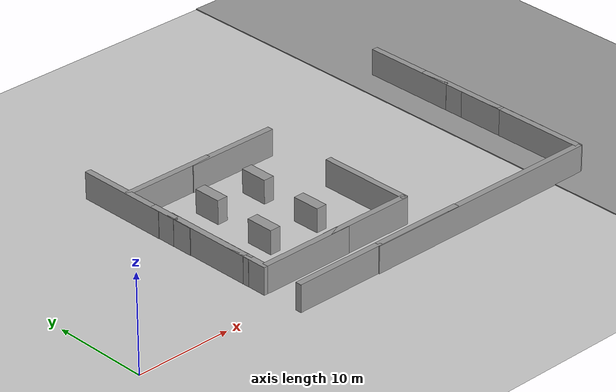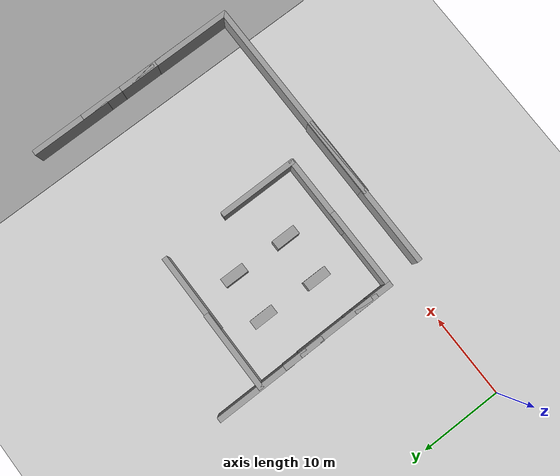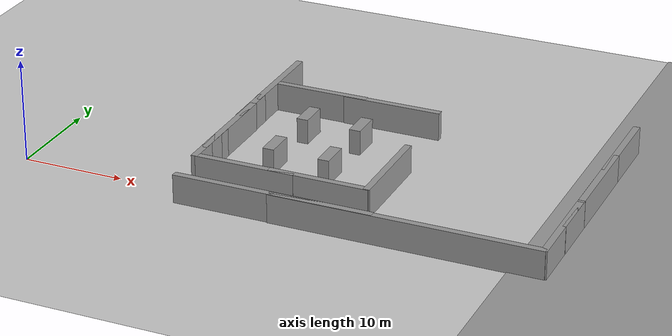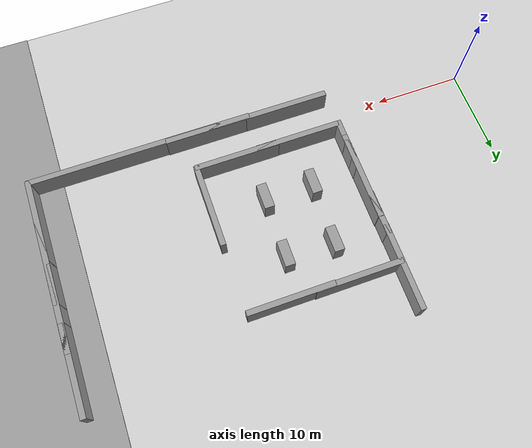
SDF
<sdf version="1.7">
 <world name="default">
  <model name="ground_plane">
   <static>1</static>
   <link name="link">
    <collision name="collision">
     <geometry><plane><normal>0 0 1</normal><size>100 100</size></plane></geometry>
     <surface><friction><ode><mu>100</mu><mu2>50</mu2></ode></friction></surface>
    </collision>
    <visual name="visual">
     <cast_shadows>0</cast_shadows>
     <geometry><plane><normal>0 0 1</normal><size>100 100</size></plane></geometry>
     <material>
      <script><uri>file://media/materials/scripts/gazebo.material</uri><name>Gazebo/Grey</name></script>
     </material>
    </visual>
   </link>
  </model>
  <model name="grey_wall_hou_clone_clone_clone_0">
   <link name="link">
    <pose>0 0 1.37589 0 -0 0</pose>
    <inertial>
     <inertia><ixx>0</ixx><ixy>0</ixy><ixz>0</ixz><iyy>0</iyy><iyz>0</iyz><izz>0</izz></inertia>
     <mass>0</mass>
    </inertial>
    <visual name="visual">
     <cast_shadows>0</cast_shadows>
     <geometry><box><size>9.82221 0.642976 2.8</size></box></geometry>
     <material>
      <script>
       <uri>model://grey_wall/materials/scripts</uri>
       <uri>model://grey_wall/materials/textures</uri>
       <name>vrc/grey_wall</name>
      </script>
      <shader type="pixel"><normal_map>__default__</normal_map></shader>
      <ambient>1 1 1 1</ambient>
      <diffuse>1 1 1 1</diffuse>
      <specular>0 0 0 1</specular>
      <emissive>0 0 0 1</emissive>
     </material>
    </visual>
    <collision name="collision">
     <geometry><box><size>9.82221 0.642976 2.8</size></box></geometry>
     <surface>
      <friction>
       <ode><mu>1</mu><mu2>1</mu2><fdir1>0 0 0</fdir1><slip1>0</slip1><slip2>0</slip2></ode>
       <torsional>
        <coefficient>1</coefficient>
        <patch_radius>0</patch_radius>
        <surface_radius>0</surface_radius>
        <use_patch_radius>1</use_patch_radius>
        <ode><slip>0</slip></ode>
       </torsional>
      </friction>
      <bounce><restitution_coefficient>0</restitution_coefficient><threshold>1e+06</threshold></bounce>
      <contact>
       <collide_without_contact>0</collide_without_contact>
       <collide_without_contact_bitmask>1</collide_without_contact_bitmask>
       <collide_bitmask>1</collide_bitmask>
       <ode>
        <soft_cfm>0</soft_cfm>
        <soft_erp>0.2</soft_erp>
        <kp>1e+13</kp>
        <kd>1</kd>
        <max_vel>0.01</max_vel>
        <min_depth>0</min_depth>
       </ode>
       <bullet>
        <split_impulse>1</split_impulse>
        <split_impulse_penetration_threshold>-0.01</split_impulse_penetration_threshold>
        <soft_cfm>0</soft_cfm>
        <soft_erp>0.2</soft_erp>
        <kp>1e+13</kp>
        <kd>1</kd>
       </bullet>
      </contact>
     </surface>
    </collision>
   </link>
   <static>1</static>
   <pose>21.4576 -1.87455 0 0 -0 0</pose>
  </model>
  <model name="grey_wall_hou_clone_clone_clone_1">
   <link name="link">
    <pose>0 0 1.37589 0 -0 0</pose>
    <inertial>
     <inertia><ixx>0</ixx><ixy>0</ixy><ixz>0</ixz><iyy>0</iyy><iyz>0</iyz><izz>0</izz></inertia>
     <mass>0</mass>
    </inertial>
    <visual name="visual">
     <cast_shadows>0</cast_shadows>
     <geometry><box><size>9.82221 0.642976 2.8</size></box></geometry>
     <material>
      <script>
       <uri>model://grey_wall/materials/scripts</uri>
       <uri>model://grey_wall/materials/textures</uri>
       <name>vrc/grey_wall</name>
      </script>
      <shader type="pixel"><normal_map>__default__</normal_map></shader>
      <ambient>1 1 1 1</ambient>
      <diffuse>1 1 1 1</diffuse>
      <specular>0 0 0 1</specular>
      <emissive>0 0 0 1</emissive>
     </material>
    </visual>
    <collision name="collision">
     <geometry><box><size>9.82221 0.642976 2.8</size></box></geometry>
     <surface>
      <friction>
       <ode><mu>1</mu><mu2>1</mu2><fdir1>0 0 0</fdir1><slip1>0</slip1><slip2>0</slip2></ode>
       <torsional>
        <coefficient>1</coefficient>
        <patch_radius>0</patch_radius>
        <surface_radius>0</surface_radius>
        <use_patch_radius>1</use_patch_radius>
        <ode><slip>0</slip></ode>
       </torsional>
      </friction>
      <bounce><restitution_coefficient>0</restitution_coefficient><threshold>1e+06</threshold></bounce>
      <contact>
       <collide_without_contact>0</collide_without_contact>
       <collide_without_contact_bitmask>1</collide_without_contact_bitmask>
       <collide_bitmask>1</collide_bitmask>
       <ode>
        <soft_cfm>0</soft_cfm>
        <soft_erp>0.2</soft_erp>
        <kp>1e+13</kp>
        <kd>1</kd>
        <max_vel>0.01</max_vel>
        <min_depth>0</min_depth>
       </ode>
       <bullet>
        <split_impulse>1</split_impulse>
        <split_impulse_penetration_threshold>-0.01</split_impulse_penetration_threshold>
        <soft_cfm>0</soft_cfm>
        <soft_erp>0.2</soft_erp>
        <kp>1e+13</kp>
        <kd>1</kd>
       </bullet>
      </contact>
     </surface>
    </collision>
   </link>
   <static>1</static>
   <pose>30.9497 -1.88522 0 0 -0 0</pose>
  </model>
  <model name="ground_plane_0">
   <static>1</static>
   <link name="link">
    <collision name="collision">
     <geometry><plane><normal>0 0 1</normal><size>100 100</size></plane></geometry>
     <surface>
      <contact><collide_bitmask>65535</collide_bitmask></contact>
      <friction><ode><mu>100</mu><mu2>50</mu2></ode></friction>
     </surface>
    </collision>
    <visual name="visual">
     <cast_shadows>0</cast_shadows>
     <geometry><plane><normal>0 0 1</normal><size>100 100</size></plane></geometry>
     <material>
      <script><uri>file://media/materials/scripts/gazebo.material</uri><name>Gazebo/Grey</name></script>
     </material>
    </visual>
   </link>
   <pose>98.3802 0.128223 0 0 -0 0</pose>
  </model>
  <model name="grey_wall_hou_clone_clone_clone_5">
   <link name="link">
    <pose>0 0 1.37589 0 -0 0</pose>
    <inertial>
     <inertia><ixx>0</ixx><ixy>0</ixy><ixz>0</ixz><iyy>0</iyy><iyz>0</iyz><izz>0</izz></inertia>
     <mass>0</mass>
    </inertial>
    <visual name="visual">
     <cast_shadows>0</cast_shadows>
     <geometry><box><size>9.82221 0.642976 2.8</size></box></geometry>
     <material>
      <script>
       <uri>model://grey_wall/materials/scripts</uri>
       <uri>model://grey_wall/materials/textures</uri>
       <name>vrc/grey_wall</name>
      </script>
      <shader type="pixel"><normal_map>__default__</normal_map></shader>
      <ambient>1 1 1 1</ambient>
      <diffuse>1 1 1 1</diffuse>
      <specular>0 0 0 1</specular>
      <emissive>0 0 0 1</emissive>
     </material>
    </visual>
    <collision name="collision">
     <geometry><box><size>9.82221 0.642976 2.8</size></box></geometry>
     <surface>
      <friction>
       <ode><mu>1</mu><mu2>1</mu2><fdir1>0 0 0</fdir1><slip1>0</slip1><slip2>0</slip2></ode>
       <torsional>
        <coefficient>1</coefficient>
        <patch_radius>0</patch_radius>
        <surface_radius>0</surface_radius>
        <use_patch_radius>1</use_patch_radius>
        <ode><slip>0</slip></ode>
       </torsional>
      </friction>
      <bounce><restitution_coefficient>0</restitution_coefficient><threshold>1e+06</threshold></bounce>
      <contact>
       <collide_without_contact>0</collide_without_contact>
       <collide_without_contact_bitmask>1</collide_without_contact_bitmask>
       <collide_bitmask>1</collide_bitmask>
       <ode>
        <soft_cfm>0</soft_cfm>
        <soft_erp>0.2</soft_erp>
        <kp>1e+13</kp>
        <kd>1</kd>
        <max_vel>0.01</max_vel>
        <min_depth>0</min_depth>
       </ode>
       <bullet>
        <split_impulse>1</split_impulse>
        <split_impulse_penetration_threshold>-0.01</split_impulse_penetration_threshold>
        <soft_cfm>0</soft_cfm>
        <soft_erp>0.2</soft_erp>
        <kp>1e+13</kp>
        <kd>1</kd>
       </bullet>
      </contact>
     </surface>
    </collision>
   </link>
   <static>1</static>
   <pose>21.5273 2.36287 0 0 -0 0</pose>
  </model>
  <model name="grey_wall_hou_clone_clone_3_clone_4">
   <link name="link">
    <pose>0 0 1.37589 0 -0 0</pose>
    <inertial>
     <inertia><ixx>0</ixx><ixy>0</ixy><ixz>0</ixz><iyy>0</iyy><iyz>0</iyz><izz>0</izz></inertia>
     <mass>0</mass>
    </inertial>
    <visual name="visual">
     <cast_shadows>0</cast_shadows>
     <geometry><box><size>9.82221 0.642976 2.8</size></box></geometry>
     <material>
      <script>
       <uri>model://grey_wall/materials/scripts</uri>
       <uri>model://grey_wall/materials/textures</uri>
       <name>vrc/grey_wall</name>
      </script>
      <shader type="pixel"><normal_map>__default__</normal_map></shader>
      <ambient>1 1 1 1</ambient>
      <diffuse>1 1 1 1</diffuse>
      <specular>0 0 0 1</specular>
      <emissive>0 0 0 1</emissive>
     </material>
    </visual>
    <collision name="collision">
     <geometry><box><size>9.82221 0.642976 2.8</size></box></geometry>
     <surface>
      <friction>
       <ode><mu>1</mu><mu2>1</mu2><fdir1>0 0 0</fdir1><slip1>0</slip1><slip2>0</slip2></ode>
       <torsional>
        <coefficient>1</coefficient>
        <patch_radius>0</patch_radius>
        <surface_radius>0</surface_radius>
        <use_patch_radius>1</use_patch_radius>
        <ode><slip>0</slip></ode>
       </torsional>
      </friction>
      <bounce><restitution_coefficient>0</restitution_coefficient><threshold>1e+06</threshold></bounce>
      <contact>
       <collide_without_contact>0</collide_without_contact>
       <collide_without_contact_bitmask>1</collide_without_contact_bitmask>
       <collide_bitmask>1</collide_bitmask>
       <ode>
        <soft_cfm>0</soft_cfm>
        <soft_erp>0.2</soft_erp>
        <kp>1e+13</kp>
        <kd>1</kd>
        <max_vel>0.01</max_vel>
        <min_depth>0</min_depth>
       </ode>
       <bullet>
        <split_impulse>1</split_impulse>
        <split_impulse_penetration_threshold>-0.01</split_impulse_penetration_threshold>
        <soft_cfm>0</soft_cfm>
        <soft_erp>0.2</soft_erp>
        <kp>1e+13</kp>
        <kd>1</kd>
       </bullet>
      </contact>
     </surface>
    </collision>
   </link>
   <static>1</static>
   <pose>16.3936 20.4757 0 0 0 -1.56855</pose>
  </model>
  <model name="grey_wall_hou_clone_clone_clone_6">
   <link name="link">
    <pose>0 0 1.37589 0 -0 0</pose>
    <inertial>
     <inertia><ixx>0</ixx><ixy>0</ixy><ixz>0</ixz><iyy>0</iyy><iyz>0</iyz><izz>0</izz></inertia>
     <mass>0</mass>
    </inertial>
    <visual name="visual">
     <cast_shadows>0</cast_shadows>
     <geometry><box><size>9.82221 0.642976 2.8</size></box></geometry>
     <material>
      <script>
       <uri>model://grey_wall/materials/scripts</uri>
       <uri>model://grey_wall/materials/textures</uri>
       <name>vrc/grey_wall</name>
      </script>
      <shader type="pixel"><normal_map>__default__</normal_map></shader>
      <ambient>1 1 1 1</ambient>
      <diffuse>1 1 1 1</diffuse>
      <specular>0 0 0 1</specular>
      <emissive>0 0 0 1</emissive>
     </material>
    </visual>
    <collision name="collision">
     <geometry><box><size>9.82221 0.642976 2.8</size></box></geometry>
     <surface>
      <friction>
       <ode><mu>1</mu><mu2>1</mu2><fdir1>0 0 0</fdir1><slip1>0</slip1><slip2>0</slip2></ode>
       <torsional>
        <coefficient>1</coefficient>
        <patch_radius>0</patch_radius>
        <surface_radius>0</surface_radius>
        <use_patch_radius>1</use_patch_radius>
        <ode><slip>0</slip></ode>
       </torsional>
      </friction>
      <bounce><restitution_coefficient>0</restitution_coefficient><threshold>1e+06</threshold></bounce>
      <contact>
       <collide_without_contact>0</collide_without_contact>
       <collide_without_contact_bitmask>1</collide_without_contact_bitmask>
       <collide_bitmask>1</collide_bitmask>
       <ode>
        <soft_cfm>0</soft_cfm>
        <soft_erp>0.2</soft_erp>
        <kp>1e+13</kp>
        <kd>1</kd>
        <max_vel>0.01</max_vel>
        <min_depth>0</min_depth>
       </ode>
       <bullet>
        <split_impulse>1</split_impulse>
        <split_impulse_penetration_threshold>-0.01</split_impulse_penetration_threshold>
        <soft_cfm>0</soft_cfm>
        <soft_erp>0.2</soft_erp>
        <kp>1e+13</kp>
        <kd>1</kd>
       </bullet>
      </contact>
     </surface>
    </collision>
   </link>
   <static>1</static>
   <pose>28.8284 2.39593 0 0 -0 0</pose>
  </model>
  <model name="grey_wall_hou_clone_clone_clone_7">
   <link name="link">
    <pose>0 0 1.37589 0 -0 0</pose>
    <inertial>
     <inertia><ixx>0</ixx><ixy>0</ixy><ixz>0</ixz><iyy>0</iyy><iyz>0</iyz><izz>0</izz></inertia>
     <mass>0</mass>
    </inertial>
    <visual name="visual">
     <cast_shadows>0</cast_shadows>
     <geometry><box><size>9.82221 0.642976 2.8</size></box></geometry>
     <material>
      <script>
       <uri>model://grey_wall/materials/scripts</uri>
       <uri>model://grey_wall/materials/textures</uri>
       <name>vrc/grey_wall</name>
      </script>
      <shader type="pixel"><normal_map>__default__</normal_map></shader>
      <ambient>1 1 1 1</ambient>
      <diffuse>1 1 1 1</diffuse>
      <specular>0 0 0 1</specular>
      <emissive>0 0 0 1</emissive>
     </material>
    </visual>
    <collision name="collision">
     <geometry><box><size>9.82221 0.642976 2.8</size></box></geometry>
     <surface>
      <friction>
       <ode><mu>1</mu><mu2>1</mu2><fdir1>0 0 0</fdir1><slip1>0</slip1><slip2>0</slip2></ode>
       <torsional>
        <coefficient>1</coefficient>
        <patch_radius>0</patch_radius>
        <surface_radius>0</surface_radius>
        <use_patch_radius>1</use_patch_radius>
        <ode><slip>0</slip></ode>
       </torsional>
      </friction>
      <bounce><restitution_coefficient>0</restitution_coefficient><threshold>1e+06</threshold></bounce>
      <contact>
       <collide_without_contact>0</collide_without_contact>
       <collide_without_contact_bitmask>1</collide_without_contact_bitmask>
       <collide_bitmask>1</collide_bitmask>
       <ode>
        <soft_cfm>0</soft_cfm>
        <soft_erp>0.2</soft_erp>
        <kp>1e+13</kp>
        <kd>1</kd>
        <max_vel>0.01</max_vel>
        <min_depth>0</min_depth>
       </ode>
       <bullet>
        <split_impulse>1</split_impulse>
        <split_impulse_penetration_threshold>-0.01</split_impulse_penetration_threshold>
        <soft_cfm>0</soft_cfm>
        <soft_erp>0.2</soft_erp>
        <kp>1e+13</kp>
        <kd>1</kd>
       </bullet>
      </contact>
     </surface>
    </collision>
   </link>
   <static>1</static>
   <pose>28.7009 19.7656 0 0 -0 0</pose>
  </model>
  <model name="grey_wall_hou_clone_clone_clone_8">
   <link name="link">
    <pose>0 0 1.37589 0 -0 0</pose>
    <inertial>
     <inertia><ixx>0</ixx><ixy>0</ixy><ixz>0</ixz><iyy>0</iyy><iyz>0</iyz><izz>0</izz></inertia>
     <mass>0</mass>
    </inertial>
    <visual name="visual">
     <cast_shadows>0</cast_shadows>
     <geometry><box><size>9.82221 0.642976 2.8</size></box></geometry>
     <material>
      <script>
       <uri>model://grey_wall/materials/scripts</uri>
       <uri>model://grey_wall/materials/textures</uri>
       <name>vrc/grey_wall</name>
      </script>
      <shader type="pixel"><normal_map>__default__</normal_map></shader>
      <ambient>1 1 1 1</ambient>
      <diffuse>1 1 1 1</diffuse>
      <specular>0 0 0 1</specular>
      <emissive>0 0 0 1</emissive>
     </material>
    </visual>
    <collision name="collision">
     <geometry><box><size>9.82221 0.642976 2.8</size></box></geometry>
     <surface>
      <friction>
       <ode><mu>1</mu><mu2>1</mu2><fdir1>0 0 0</fdir1><slip1>0</slip1><slip2>0</slip2></ode>
       <torsional>
        <coefficient>1</coefficient>
        <patch_radius>0</patch_radius>
        <surface_radius>0</surface_radius>
        <use_patch_radius>1</use_patch_radius>
        <ode><slip>0</slip></ode>
       </torsional>
      </friction>
      <bounce><restitution_coefficient>0</restitution_coefficient><threshold>1e+06</threshold></bounce>
      <contact>
       <collide_without_contact>0</collide_without_contact>
       <collide_without_contact_bitmask>1</collide_without_contact_bitmask>
       <collide_bitmask>1</collide_bitmask>
       <ode>
        <soft_cfm>0</soft_cfm>
        <soft_erp>0.2</soft_erp>
        <kp>1e+13</kp>
        <kd>1</kd>
        <max_vel>0.01</max_vel>
        <min_depth>0</min_depth>
       </ode>
       <bullet>
        <split_impulse>1</split_impulse>
        <split_impulse_penetration_threshold>-0.01</split_impulse_penetration_threshold>
        <soft_cfm>0</soft_cfm>
        <soft_erp>0.2</soft_erp>
        <kp>1e+13</kp>
        <kd>1</kd>
       </bullet>
      </contact>
     </surface>
    </collision>
   </link>
   <static>1</static>
   <pose>21.1249 19.8433 0 0 -0 0</pose>
  </model>
  <model name="grey_wall_hou_clone_clone_3_clone_0_clone_1_clone_3_clone_0">
   <link name="link">
    <pose>0 0 1.37589 0 -0 0</pose>
    <inertial>
     <inertia><ixx>0</ixx><ixy>0</ixy><ixz>0</ixz><iyy>0</iyy><iyz>0</iyz><izz>0</izz></inertia>
     <mass>0</mass>
    </inertial>
    <visual name="visual">
     <cast_shadows>0</cast_shadows>
     <geometry><box><size>9.82221 0.642976 2.8</size></box></geometry>
     <material>
      <script>
       <uri>model://grey_wall/materials/scripts</uri>
       <uri>model://grey_wall/materials/textures</uri>
       <name>vrc/grey_wall</name>
      </script>
      <shader type="pixel"><normal_map>__default__</normal_map></shader>
      <ambient>1 1 1 1</ambient>
      <diffuse>1 1 1 1</diffuse>
      <specular>0 0 0 1</specular>
      <emissive>0 0 0 1</emissive>
     </material>
    </visual>
    <collision name="collision">
     <geometry><box><size>9.82221 0.642976 2.8</size></box></geometry>
     <surface>
      <friction>
       <ode><mu>1</mu><mu2>1</mu2><fdir1>0 0 0</fdir1><slip1>0</slip1><slip2>0</slip2></ode>
       <torsional>
        <coefficient>1</coefficient>
        <patch_radius>0</patch_radius>
        <surface_radius>0</surface_radius>
        <use_patch_radius>1</use_patch_radius>
        <ode><slip>0</slip></ode>
       </torsional>
      </friction>
      <bounce><restitution_coefficient>0</restitution_coefficient><threshold>1e+06</threshold></bounce>
      <contact>
       <collide_without_contact>0</collide_without_contact>
       <collide_without_contact_bitmask>1</collide_without_contact_bitmask>
       <collide_bitmask>1</collide_bitmask>
       <ode>
        <soft_cfm>0</soft_cfm>
        <soft_erp>0.2</soft_erp>
        <kp>1e+13</kp>
        <kd>1</kd>
        <max_vel>0.01</max_vel>
        <min_depth>0</min_depth>
       </ode>
       <bullet>
        <split_impulse>1</split_impulse>
        <split_impulse_penetration_threshold>-0.01</split_impulse_penetration_threshold>
        <soft_cfm>0</soft_cfm>
        <soft_erp>0.2</soft_erp>
        <kp>1e+13</kp>
        <kd>1</kd>
       </bullet>
      </contact>
     </surface>
    </collision>
   </link>
   <static>1</static>
   <pose>51.5979 7.56842 0 0 0 -1.56855</pose>
  </model>
  <model name="grey_wall_hou_clone_clone_3_clone_0_clone_1_clone_3_clone_clone_1">
   <link name="link">
    <pose>0 0 1.37589 0 -0 0</pose>
    <inertial>
     <inertia><ixx>0</ixx><ixy>0</ixy><ixz>0</ixz><iyy>0</iyy><iyz>0</iyz><izz>0</izz></inertia>
     <mass>0</mass>
    </inertial>
    <visual name="visual">
     <cast_shadows>0</cast_shadows>
     <geometry><box><size>9.82221 0.642976 2.8</size></box></geometry>
     <material>
      <script>
       <uri>model://grey_wall/materials/scripts</uri>
       <uri>model://grey_wall/materials/textures</uri>
       <name>vrc/grey_wall</name>
      </script>
      <shader type="pixel"><normal_map>__default__</normal_map></shader>
      <ambient>1 1 1 1</ambient>
      <diffuse>1 1 1 1</diffuse>
      <specular>0 0 0 1</specular>
      <emissive>0 0 0 1</emissive>
     </material>
    </visual>
    <collision name="collision">
     <geometry><box><size>9.82221 0.642976 2.8</size></box></geometry>
     <surface>
      <friction>
       <ode><mu>1</mu><mu2>1</mu2><fdir1>0 0 0</fdir1><slip1>0</slip1><slip2>0</slip2></ode>
       <torsional>
        <coefficient>1</coefficient>
        <patch_radius>0</patch_radius>
        <surface_radius>0</surface_radius>
        <use_patch_radius>1</use_patch_radius>
        <ode><slip>0</slip></ode>
       </torsional>
      </friction>
      <bounce><restitution_coefficient>0</restitution_coefficient><threshold>1e+06</threshold></bounce>
      <contact>
       <collide_without_contact>0</collide_without_contact>
       <collide_without_contact_bitmask>1</collide_without_contact_bitmask>
       <collide_bitmask>1</collide_bitmask>
       <ode>
        <soft_cfm>0</soft_cfm>
        <soft_erp>0.2</soft_erp>
        <kp>1e+13</kp>
        <kd>1</kd>
        <max_vel>0.01</max_vel>
        <min_depth>0</min_depth>
       </ode>
       <bullet>
        <split_impulse>1</split_impulse>
        <split_impulse_penetration_threshold>-0.01</split_impulse_penetration_threshold>
        <soft_cfm>0</soft_cfm>
        <soft_erp>0.2</soft_erp>
        <kp>1e+13</kp>
        <kd>1</kd>
       </bullet>
      </contact>
     </surface>
    </collision>
   </link>
   <static>1</static>
   <pose>51.5651 19.3838 0 0 0 -1.56855</pose>
  </model>
  <model name="grey_wall_hou_clone_clone_3_clone_0_clone_1_clone_3_clone_clone_2">
   <link name="link">
    <pose>0 0 1.37589 0 -0 0</pose>
    <inertial>
     <inertia><ixx>0</ixx><ixy>0</ixy><ixz>0</ixz><iyy>0</iyy><iyz>0</iyz><izz>0</izz></inertia>
     <mass>0</mass>
    </inertial>
    <visual name="visual">
     <cast_shadows>0</cast_shadows>
     <geometry><box><size>9.82221 0.642976 2.8</size></box></geometry>
     <material>
      <script>
       <uri>model://grey_wall/materials/scripts</uri>
       <uri>model://grey_wall/materials/textures</uri>
       <name>vrc/grey_wall</name>
      </script>
      <shader type="pixel"><normal_map>__default__</normal_map></shader>
      <ambient>1 1 1 1</ambient>
      <diffuse>1 1 1 1</diffuse>
      <specular>0 0 0 1</specular>
      <emissive>0 0 0 1</emissive>
     </material>
    </visual>
    <collision name="collision">
     <geometry><box><size>9.82221 0.642976 2.8</size></box></geometry>
     <surface>
      <friction>
       <ode><mu>1</mu><mu2>1</mu2><fdir1>0 0 0</fdir1><slip1>0</slip1><slip2>0</slip2></ode>
       <torsional>
        <coefficient>1</coefficient>
        <patch_radius>0</patch_radius>
        <surface_radius>0</surface_radius>
        <use_patch_radius>1</use_patch_radius>
        <ode><slip>0</slip></ode>
       </torsional>
      </friction>
      <bounce><restitution_coefficient>0</restitution_coefficient><threshold>1e+06</threshold></bounce>
      <contact>
       <collide_without_contact>0</collide_without_contact>
       <collide_without_contact_bitmask>1</collide_without_contact_bitmask>
       <collide_bitmask>1</collide_bitmask>
       <ode>
        <soft_cfm>0</soft_cfm>
        <soft_erp>0.2</soft_erp>
        <kp>1e+13</kp>
        <kd>1</kd>
        <max_vel>0.01</max_vel>
        <min_depth>0</min_depth>
       </ode>
       <bullet>
        <split_impulse>1</split_impulse>
        <split_impulse_penetration_threshold>-0.01</split_impulse_penetration_threshold>
        <soft_cfm>0</soft_cfm>
        <soft_erp>0.2</soft_erp>
        <kp>1e+13</kp>
        <kd>1</kd>
       </bullet>
      </contact>
     </surface>
    </collision>
   </link>
   <static>1</static>
   <pose>51.5924 12.8167 0 0 0 -1.56855</pose>
  </model>
  <model name="grey_wall_long">
   <link name="link">
    <pose>0 0 1.37589 0 -0 0</pose>
    <inertial>
     <inertia><ixx>0</ixx><ixy>0</ixy><ixz>0</ixz><iyy>0</iyy><iyz>0</iyz><izz>0</izz></inertia>
     <mass>0</mass>
    </inertial>
    <visual name="visual">
     <cast_shadows>0</cast_shadows>
     <geometry><box><size>25.8815 0.642976 2.8</size></box></geometry>
     <material>
      <script>
       <uri>model://grey_wall/materials/scripts</uri>
       <uri>model://grey_wall/materials/textures</uri>
       <name>vrc/grey_wall</name>
      </script>
      <shader type="pixel"><normal_map>__default__</normal_map></shader>
      <ambient>1 1 1 1</ambient>
      <diffuse>1 1 1 1</diffuse>
      <specular>0 0 0 1</specular>
      <emissive>0 0 0 1</emissive>
     </material>
    </visual>
    <collision name="collision">
     <geometry><box><size>25.8815 0.642976 2.8</size></box></geometry>
     <surface>
      <friction>
       <ode><mu>1</mu><mu2>1</mu2><fdir1>0 0 0</fdir1><slip1>0</slip1><slip2>0</slip2></ode>
       <torsional>
        <coefficient>1</coefficient>
        <patch_radius>0</patch_radius>
        <surface_radius>0</surface_radius>
        <use_patch_radius>1</use_patch_radius>
        <ode><slip>0</slip></ode>
       </torsional>
      </friction>
      <bounce><restitution_coefficient>0</restitution_coefficient><threshold>1e+06</threshold></bounce>
      <contact>
       <collide_without_contact>0</collide_without_contact>
       <collide_without_contact_bitmask>1</collide_without_contact_bitmask>
       <collide_bitmask>1</collide_bitmask>
       <ode>
        <soft_cfm>0</soft_cfm>
        <soft_erp>0.2</soft_erp>
        <kp>1e+13</kp>
        <kd>1</kd>
        <max_vel>0.01</max_vel>
        <min_depth>0</min_depth>
       </ode>
       <bullet>
        <split_impulse>1</split_impulse>
        <split_impulse_penetration_threshold>-0.01</split_impulse_penetration_threshold>
        <soft_cfm>0</soft_cfm>
        <soft_erp>0.2</soft_erp>
        <kp>1e+13</kp>
        <kd>1</kd>
       </bullet>
      </contact>
     </surface>
    </collision>
   </link>
   <static>1</static>
   <pose>38.839 -1.96361 0 0 -0 0</pose>
  </model>
  <model name="unit_box_clone_10">
   <pose>27.5167 14.9233 1.23849 4e-06 -0 -0.003523</pose>
   <link name="link">
    <inertial>
     <mass>1</mass>
     <inertia>
      <ixx>0.166667</ixx>
      <ixy>0</ixy>
      <ixz>0</ixz>
      <iyy>0.166667</iyy>
      <iyz>0</iyz>
      <izz>0.166667</izz>
     </inertia>
    </inertial>
    <collision name="collision"><geometry><box><size>1.12952 2.91492 2.47699</size></box></geometry></collision>
    <visual name="visual">
     <geometry><box><size>1.12952 2.91492 2.47699</size></box></geometry>
     <material>
      <script><name>Gazebo/Grey</name><uri>file://media/materials/scripts/gazebo.material</uri></script>
     </material>
    </visual>
   </link>
  </model>
  <model name="unit_box_clone_11">
   <pose>27.3994 7.99611 1.23849 4e-06 -0 0.006005</pose>
   <link name="link">
    <inertial>
     <mass>1</mass>
     <inertia>
      <ixx>0.166667</ixx>
      <ixy>0</ixy>
      <ixz>0</ixz>
      <iyy>0.166667</iyy>
      <iyz>0</iyz>
      <izz>0.166667</izz>
     </inertia>
    </inertial>
    <collision name="collision"><geometry><box><size>1.12952 2.91492 2.47699</size></box></geometry></collision>
    <visual name="visual">
     <geometry><box><size>1.12952 2.91492 2.47699</size></box></geometry>
     <material>
      <script><name>Gazebo/Grey</name><uri>file://media/materials/scripts/gazebo.material</uri></script>
     </material>
    </visual>
   </link>
  </model>
  <model name="unit_box_clone_12">
   <pose>22.0379 15.1339 1.23849 4e-06 -0 0.005237</pose>
   <link name="link">
    <inertial>
     <mass>1</mass>
     <inertia>
      <ixx>0.166667</ixx>
      <ixy>0</ixy>
      <ixz>0</ixz>
      <iyy>0.166667</iyy>
      <iyz>0</iyz>
      <izz>0.166667</izz>
     </inertia>
    </inertial>
    <collision name="collision"><geometry><box><size>1.12952 2.91492 2.47699</size></box></geometry></collision>
    <visual name="visual">
     <geometry><box><size>1.12952 2.91492 2.47699</size></box></geometry>
     <material>
      <script><name>Gazebo/Grey</name><uri>file://media/materials/scripts/gazebo.material</uri></script>
     </material>
    </visual>
   </link>
  </model>
  <model name="unit_box_clone_13">
   <pose>21.8277 8.0603 1.23849 -4e-06 -0 0.002992</pose>
   <link name="link">
    <inertial>
     <mass>1</mass>
     <inertia>
      <ixx>0.166667</ixx>
      <ixy>0</ixy>
      <ixz>0</ixz>
      <iyy>0.166667</iyy>
      <iyz>0</iyz>
      <izz>0.166667</izz>
     </inertia>
    </inertial>
    <collision name="collision"><geometry><box><size>1.12952 2.91492 2.47699</size></box></geometry></collision>
    <visual name="visual">
     <geometry><box><size>1.12952 2.91492 2.47699</size></box></geometry>
     <material>
      <script><name>Gazebo/Grey</name><uri>file://media/materials/scripts/gazebo.material</uri></script>
     </material>
    </visual>
   </link>
  </model>
  <model name="grey_wall_short_0_clone_2">
   <link name="link">
    <pose>0 0 1.37589 0 -0 0</pose>
    <inertial>
     <inertia><ixx>0</ixx><ixy>0</ixy><ixz>0</ixz><iyy>0</iyy><iyz>0</iyz><izz>0</izz></inertia>
     <mass>0</mass>
    </inertial>
    <visual name="visual">
     <cast_shadows>0</cast_shadows>
     <geometry><box><size>3.01651 0.642976 2.8</size></box></geometry>
     <material>
      <script>
       <uri>model://grey_wall/materials/scripts</uri>
       <uri>model://grey_wall/materials/textures</uri>
       <name>vrc/grey_wall</name>
      </script>
      <shader type="pixel"><normal_map>__default__</normal_map></shader>
      <ambient>1 1 1 1</ambient>
      <diffuse>1 1 1 1</diffuse>
      <specular>0 0 0 1</specular>
      <emissive>0 0 0 1</emissive>
     </material>
    </visual>
    <collision name="collision">
     <geometry><box><size>3.01651 0.642976 2.8</size></box></geometry>
     <surface>
      <friction>
       <ode><mu>1</mu><mu2>1</mu2><fdir1>0 0 0</fdir1><slip1>0</slip1><slip2>0</slip2></ode>
       <torsional>
        <coefficient>1</coefficient>
        <patch_radius>0</patch_radius>
        <surface_radius>0</surface_radius>
        <use_patch_radius>1</use_patch_radius>
        <ode><slip>0</slip></ode>
       </torsional>
      </friction>
      <bounce><restitution_coefficient>0</restitution_coefficient><threshold>1e+06</threshold></bounce>
      <contact>
       <collide_without_contact>0</collide_without_contact>
       <collide_without_contact_bitmask>1</collide_without_contact_bitmask>
       <collide_bitmask>1</collide_bitmask>
       <ode>
        <soft_cfm>0</soft_cfm>
        <soft_erp>0.2</soft_erp>
        <kp>1e+13</kp>
        <kd>1</kd>
        <max_vel>0.01</max_vel>
        <min_depth>0</min_depth>
       </ode>
       <bullet>
        <split_impulse>1</split_impulse>
        <split_impulse_penetration_threshold>-0.01</split_impulse_penetration_threshold>
        <soft_cfm>0</soft_cfm>
        <soft_erp>0.2</soft_erp>
        <kp>1e+13</kp>
        <kd>1</kd>
       </bullet>
      </contact>
     </surface>
    </collision>
   </link>
   <static>1</static>
   <pose>16.5494 3.563 0 0 0 -1.57204</pose>
  </model>
  <model name="grey_wall_short_0_clone_3">
   <link name="link">
    <pose>0 0 1.37589 0 -0 0</pose>
    <inertial>
     <inertia><ixx>0</ixx><ixy>0</ixy><ixz>0</ixz><iyy>0</iyy><iyz>0</iyz><izz>0</izz></inertia>
     <mass>0</mass>
    </inertial>
    <visual name="visual">
     <cast_shadows>0</cast_shadows>
     <geometry><box><size>3.01651 0.642976 2.8</size></box></geometry>
     <material>
      <script>
       <uri>model://grey_wall/materials/scripts</uri>
       <uri>model://grey_wall/materials/textures</uri>
       <name>vrc/grey_wall</name>
      </script>
      <shader type="pixel"><normal_map>__default__</normal_map></shader>
      <ambient>1 1 1 1</ambient>
      <diffuse>1 1 1 1</diffuse>
      <specular>0 0 0 1</specular>
      <emissive>0 0 0 1</emissive>
     </material>
    </visual>
    <collision name="collision">
     <geometry><box><size>3.01651 0.642976 2.8</size></box></geometry>
     <surface>
      <friction>
       <ode><mu>1</mu><mu2>1</mu2><fdir1>0 0 0</fdir1><slip1>0</slip1><slip2>0</slip2></ode>
       <torsional>
        <coefficient>1</coefficient>
        <patch_radius>0</patch_radius>
        <surface_radius>0</surface_radius>
        <use_patch_radius>1</use_patch_radius>
        <ode><slip>0</slip></ode>
       </torsional>
      </friction>
      <bounce><restitution_coefficient>0</restitution_coefficient><threshold>1e+06</threshold></bounce>
      <contact>
       <collide_without_contact>0</collide_without_contact>
       <collide_without_contact_bitmask>1</collide_without_contact_bitmask>
       <collide_bitmask>1</collide_bitmask>
       <ode>
        <soft_cfm>0</soft_cfm>
        <soft_erp>0.2</soft_erp>
        <kp>1e+13</kp>
        <kd>1</kd>
        <max_vel>0.01</max_vel>
        <min_depth>0</min_depth>
       </ode>
       <bullet>
        <split_impulse>1</split_impulse>
        <split_impulse_penetration_threshold>-0.01</split_impulse_penetration_threshold>
        <soft_cfm>0</soft_cfm>
        <soft_erp>0.2</soft_erp>
        <kp>1e+13</kp>
        <kd>1</kd>
       </bullet>
      </contact>
     </surface>
    </collision>
   </link>
   <static>1</static>
   <pose>16.5374 5.55252 0 0 0 -1.57204</pose>
  </model>
  <model name="grey_wall_short_0_clone_4">
   <link name="link">
    <pose>0 0 1.37589 0 -0 0</pose>
    <inertial>
     <inertia><ixx>0</ixx><ixy>0</ixy><ixz>0</ixz><iyy>0</iyy><iyz>0</iyz><izz>0</izz></inertia>
     <mass>0</mass>
    </inertial>
    <visual name="visual">
     <cast_shadows>0</cast_shadows>
     <geometry><box><size>3.01651 0.642976 2.8</size></box></geometry>
     <material>
      <script>
       <uri>model://grey_wall/materials/scripts</uri>
       <uri>model://grey_wall/materials/textures</uri>
       <name>vrc/grey_wall</name>
      </script>
      <shader type="pixel"><normal_map>__default__</normal_map></shader>
      <ambient>1 1 1 1</ambient>
      <diffuse>1 1 1 1</diffuse>
      <specular>0 0 0 1</specular>
      <emissive>0 0 0 1</emissive>
     </material>
    </visual>
    <collision name="collision">
     <geometry><box><size>3.01651 0.642976 2.8</size></box></geometry>
     <surface>
      <friction>
       <ode><mu>1</mu><mu2>1</mu2><fdir1>0 0 0</fdir1><slip1>0</slip1><slip2>0</slip2></ode>
       <torsional>
        <coefficient>1</coefficient>
        <patch_radius>0</patch_radius>
        <surface_radius>0</surface_radius>
        <use_patch_radius>1</use_patch_radius>
        <ode><slip>0</slip></ode>
       </torsional>
      </friction>
      <bounce><restitution_coefficient>0</restitution_coefficient><threshold>1e+06</threshold></bounce>
      <contact>
       <collide_without_contact>0</collide_without_contact>
       <collide_without_contact_bitmask>1</collide_without_contact_bitmask>
       <collide_bitmask>1</collide_bitmask>
       <ode>
        <soft_cfm>0</soft_cfm>
        <soft_erp>0.2</soft_erp>
        <kp>1e+13</kp>
        <kd>1</kd>
        <max_vel>0.01</max_vel>
        <min_depth>0</min_depth>
       </ode>
       <bullet>
        <split_impulse>1</split_impulse>
        <split_impulse_penetration_threshold>-0.01</split_impulse_penetration_threshold>
        <soft_cfm>0</soft_cfm>
        <soft_erp>0.2</soft_erp>
        <kp>1e+13</kp>
        <kd>1</kd>
       </bullet>
      </contact>
     </surface>
    </collision>
   </link>
   <static>1</static>
   <pose>16.5353 6.8515 0 0 0 -1.57204</pose>
  </model>
  <model name="grey_wall_short_0_clone_5">
   <link name="link">
    <pose>0 0 1.37589 0 -0 0</pose>
    <inertial>
     <inertia><ixx>0</ixx><ixy>0</ixy><ixz>0</ixz><iyy>0</iyy><iyz>0</iyz><izz>0</izz></inertia>
     <mass>0</mass>
    </inertial>
    <visual name="visual">
     <cast_shadows>0</cast_shadows>
     <geometry><box><size>3.01651 0.642976 2.8</size></box></geometry>
     <material>
      <script>
       <uri>model://grey_wall/materials/scripts</uri>
       <uri>model://grey_wall/materials/textures</uri>
       <name>vrc/grey_wall</name>
      </script>
      <shader type="pixel"><normal_map>__default__</normal_map></shader>
      <ambient>1 1 1 1</ambient>
      <diffuse>1 1 1 1</diffuse>
      <specular>0 0 0 1</specular>
      <emissive>0 0 0 1</emissive>
     </material>
    </visual>
    <collision name="collision">
     <geometry><box><size>3.01651 0.642976 2.8</size></box></geometry>
     <surface>
      <friction>
       <ode><mu>1</mu><mu2>1</mu2><fdir1>0 0 0</fdir1><slip1>0</slip1><slip2>0</slip2></ode>
       <torsional>
        <coefficient>1</coefficient>
        <patch_radius>0</patch_radius>
        <surface_radius>0</surface_radius>
        <use_patch_radius>1</use_patch_radius>
        <ode><slip>0</slip></ode>
       </torsional>
      </friction>
      <bounce><restitution_coefficient>0</restitution_coefficient><threshold>1e+06</threshold></bounce>
      <contact>
       <collide_without_contact>0</collide_without_contact>
       <collide_without_contact_bitmask>1</collide_without_contact_bitmask>
       <collide_bitmask>1</collide_bitmask>
       <ode>
        <soft_cfm>0</soft_cfm>
        <soft_erp>0.2</soft_erp>
        <kp>1e+13</kp>
        <kd>1</kd>
        <max_vel>0.01</max_vel>
        <min_depth>0</min_depth>
       </ode>
       <bullet>
        <split_impulse>1</split_impulse>
        <split_impulse_penetration_threshold>-0.01</split_impulse_penetration_threshold>
        <soft_cfm>0</soft_cfm>
        <soft_erp>0.2</soft_erp>
        <kp>1e+13</kp>
        <kd>1</kd>
       </bullet>
      </contact>
     </surface>
    </collision>
   </link>
   <static>1</static>
   <pose>16.4538 12.9881 0 0 0 -1.57204</pose>
  </model>
  <model name="grey_wall_short_0_clone_6">
   <link name="link">
    <pose>0 0 1.37589 0 -0 0</pose>
    <inertial>
     <inertia><ixx>0</ixx><ixy>0</ixy><ixz>0</ixz><iyy>0</iyy><iyz>0</iyz><izz>0</izz></inertia>
     <mass>0</mass>
    </inertial>
    <visual name="visual">
     <cast_shadows>0</cast_shadows>
     <geometry><box><size>3.01651 0.642976 2.8</size></box></geometry>
     <material>
      <script>
       <uri>model://grey_wall/materials/scripts</uri>
       <uri>model://grey_wall/materials/textures</uri>
       <name>vrc/grey_wall</name>
      </script>
      <shader type="pixel"><normal_map>__default__</normal_map></shader>
      <ambient>1 1 1 1</ambient>
      <diffuse>1 1 1 1</diffuse>
      <specular>0 0 0 1</specular>
      <emissive>0 0 0 1</emissive>
     </material>
    </visual>
    <collision name="collision">
     <geometry><box><size>3.01651 0.642976 2.8</size></box></geometry>
     <surface>
      <friction>
       <ode><mu>1</mu><mu2>1</mu2><fdir1>0 0 0</fdir1><slip1>0</slip1><slip2>0</slip2></ode>
       <torsional>
        <coefficient>1</coefficient>
        <patch_radius>0</patch_radius>
        <surface_radius>0</surface_radius>
        <use_patch_radius>1</use_patch_radius>
        <ode><slip>0</slip></ode>
       </torsional>
      </friction>
      <bounce><restitution_coefficient>0</restitution_coefficient><threshold>1e+06</threshold></bounce>
      <contact>
       <collide_without_contact>0</collide_without_contact>
       <collide_without_contact_bitmask>1</collide_without_contact_bitmask>
       <collide_bitmask>1</collide_bitmask>
       <ode>
        <soft_cfm>0</soft_cfm>
        <soft_erp>0.2</soft_erp>
        <kp>1e+13</kp>
        <kd>1</kd>
        <max_vel>0.01</max_vel>
        <min_depth>0</min_depth>
       </ode>
       <bullet>
        <split_impulse>1</split_impulse>
        <split_impulse_penetration_threshold>-0.01</split_impulse_penetration_threshold>
        <soft_cfm>0</soft_cfm>
        <soft_erp>0.2</soft_erp>
        <kp>1e+13</kp>
        <kd>1</kd>
       </bullet>
      </contact>
     </surface>
    </collision>
   </link>
   <static>1</static>
   <pose>16.4413 15.1358 0 0 0 -1.57204</pose>
  </model>
  <model name="grey_wall_hou_clone_clone_3_clone_0_clone_1_clone_2_clone_1">
   <link name="link">
    <pose>0 0 1.37589 0 -0 0</pose>
    <inertial>
     <inertia><ixx>0</ixx><ixy>0</ixy><ixz>0</ixz><iyy>0</iyy><iyz>0</iyz><izz>0</izz></inertia>
     <mass>0</mass>
    </inertial>
    <visual name="visual">
     <cast_shadows>0</cast_shadows>
     <geometry><box><size>9.82221 0.642976 2.8</size></box></geometry>
     <material>
      <script>
       <uri>model://grey_wall/materials/scripts</uri>
       <uri>model://grey_wall/materials/textures</uri>
       <name>vrc/grey_wall</name>
      </script>
      <shader type="pixel"><normal_map>__default__</normal_map></shader>
      <ambient>1 1 1 1</ambient>
      <diffuse>1 1 1 1</diffuse>
      <specular>0 0 0 1</specular>
      <emissive>0 0 0 1</emissive>
     </material>
    </visual>
    <collision name="collision">
     <geometry><box><size>9.82221 0.642976 2.8</size></box></geometry>
     <surface>
      <friction>
       <ode><mu>1</mu><mu2>1</mu2><fdir1>0 0 0</fdir1><slip1>0</slip1><slip2>0</slip2></ode>
       <torsional>
        <coefficient>1</coefficient>
        <patch_radius>0</patch_radius>
        <surface_radius>0</surface_radius>
        <use_patch_radius>1</use_patch_radius>
        <ode><slip>0</slip></ode>
       </torsional>
      </friction>
      <bounce><restitution_coefficient>0</restitution_coefficient><threshold>1e+06</threshold></bounce>
      <contact>
       <collide_without_contact>0</collide_without_contact>
       <collide_without_contact_bitmask>1</collide_without_contact_bitmask>
       <collide_bitmask>1</collide_bitmask>
       <ode>
        <soft_cfm>0</soft_cfm>
        <soft_erp>0.2</soft_erp>
        <kp>1e+13</kp>
        <kd>1</kd>
        <max_vel>0.01</max_vel>
        <min_depth>0</min_depth>
       </ode>
       <bullet>
        <split_impulse>1</split_impulse>
        <split_impulse_penetration_threshold>-0.01</split_impulse_penetration_threshold>
        <soft_cfm>0</soft_cfm>
        <soft_erp>0.2</soft_erp>
        <kp>1e+13</kp>
        <kd>1</kd>
       </bullet>
      </contact>
     </surface>
    </collision>
   </link>
   <static>1</static>
   <pose>51.5952 2.67856 0 0 0 -1.56855</pose>
  </model>
  <model name="grey_wall_hou_clone_clone_3_clone_0_clone_1_clone_2_clone_clone_1">
   <link name="link">
    <pose>0 0 1.37589 0 -0 0</pose>
    <inertial>
     <inertia><ixx>0</ixx><ixy>0</ixy><ixz>0</ixz><iyy>0</iyy><iyz>0</iyz><izz>0</izz></inertia>
     <mass>0</mass>
    </inertial>
    <visual name="visual">
     <cast_shadows>0</cast_shadows>
     <geometry><box><size>9.82221 0.642976 2.8</size></box></geometry>
     <material>
      <script>
       <uri>model://grey_wall/materials/scripts</uri>
       <uri>model://grey_wall/materials/textures</uri>
       <name>vrc/grey_wall</name>
      </script>
      <shader type="pixel"><normal_map>__default__</normal_map></shader>
      <ambient>1 1 1 1</ambient>
      <diffuse>1 1 1 1</diffuse>
      <specular>0 0 0 1</specular>
      <emissive>0 0 0 1</emissive>
     </material>
    </visual>
    <collision name="collision">
     <geometry><box><size>9.82221 0.642976 2.8</size></box></geometry>
     <surface>
      <friction>
       <ode><mu>1</mu><mu2>1</mu2><fdir1>0 0 0</fdir1><slip1>0</slip1><slip2>0</slip2></ode>
       <torsional>
        <coefficient>1</coefficient>
        <patch_radius>0</patch_radius>
        <surface_radius>0</surface_radius>
        <use_patch_radius>1</use_patch_radius>
        <ode><slip>0</slip></ode>
       </torsional>
      </friction>
      <bounce><restitution_coefficient>0</restitution_coefficient><threshold>1e+06</threshold></bounce>
      <contact>
       <collide_without_contact>0</collide_without_contact>
       <collide_without_contact_bitmask>1</collide_without_contact_bitmask>
       <collide_bitmask>1</collide_bitmask>
       <ode>
        <soft_cfm>0</soft_cfm>
        <soft_erp>0.2</soft_erp>
        <kp>1e+13</kp>
        <kd>1</kd>
        <max_vel>0.01</max_vel>
        <min_depth>0</min_depth>
       </ode>
       <bullet>
        <split_impulse>1</split_impulse>
        <split_impulse_penetration_threshold>-0.01</split_impulse_penetration_threshold>
        <soft_cfm>0</soft_cfm>
        <soft_erp>0.2</soft_erp>
        <kp>1e+13</kp>
        <kd>1</kd>
       </bullet>
      </contact>
     </surface>
    </collision>
   </link>
   <static>1</static>
   <pose>16.5159 9.63373 0 0 0 -1.56855</pose>
  </model>
  <model name="grey_wall_hou_clone_clone_3_clone_0_clone_1_clone_1_clone">
   <link name="link">
    <pose>0 0 1.37589 0 -0 0</pose>
    <inertial>
     <inertia><ixx>0</ixx><ixy>0</ixy><ixz>0</ixz><iyy>0</iyy><iyz>0</iyz><izz>0</izz></inertia>
     <mass>0</mass>
    </inertial>
    <visual name="visual">
     <cast_shadows>0</cast_shadows>
     <geometry><box><size>9.82221 0.642976 2.8</size></box></geometry>
     <material>
      <script>
       <uri>model://grey_wall/materials/scripts</uri>
       <uri>model://grey_wall/materials/textures</uri>
       <name>vrc/grey_wall</name>
      </script>
      <shader type="pixel"><normal_map>__default__</normal_map></shader>
      <ambient>1 1 1 1</ambient>
      <diffuse>1 1 1 1</diffuse>
      <specular>0 0 0 1</specular>
      <emissive>0 0 0 1</emissive>
     </material>
    </visual>
    <collision name="collision">
     <geometry><box><size>9.82221 0.642976 2.8</size></box></geometry>
     <surface>
      <friction>
       <ode><mu>1</mu><mu2>1</mu2><fdir1>0 0 0</fdir1><slip1>0</slip1><slip2>0</slip2></ode>
       <torsional>
        <coefficient>1</coefficient>
        <patch_radius>0</patch_radius>
        <surface_radius>0</surface_radius>
        <use_patch_radius>1</use_patch_radius>
        <ode><slip>0</slip></ode>
       </torsional>
      </friction>
      <bounce><restitution_coefficient>0</restitution_coefficient><threshold>1e+06</threshold></bounce>
      <contact>
       <collide_without_contact>0</collide_without_contact>
       <collide_without_contact_bitmask>1</collide_without_contact_bitmask>
       <collide_bitmask>1</collide_bitmask>
       <ode>
        <soft_cfm>0</soft_cfm>
        <soft_erp>0.2</soft_erp>
        <kp>1e+13</kp>
        <kd>1</kd>
        <max_vel>0.01</max_vel>
        <min_depth>0</min_depth>
       </ode>
       <bullet>
        <split_impulse>1</split_impulse>
        <split_impulse_penetration_threshold>-0.01</split_impulse_penetration_threshold>
        <soft_cfm>0</soft_cfm>
        <soft_erp>0.2</soft_erp>
        <kp>1e+13</kp>
        <kd>1</kd>
       </bullet>
      </contact>
     </surface>
    </collision>
   </link>
   <static>1</static>
   <pose>33.5286 7.09799 0 0 0 -1.56855</pose>
  </model>
 </world>
</sdf>
